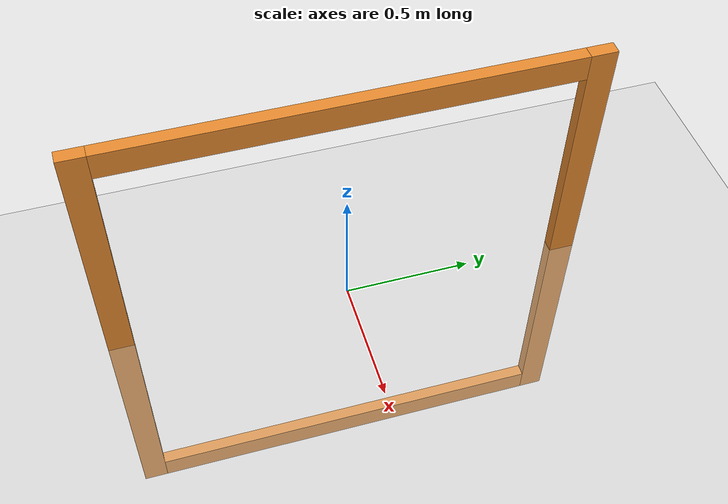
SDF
<sdf version="1.4">
 <world name="smart_drone_simple_world">
  <include><uri>model://ground_plane</uri></include>
  <include><uri>model://sun</uri></include>
  <model name="smart_drone_orange_gate7">
   <link name="left">
    <pose>0 -0.9 0 0 -0 0</pose>
    <inertial>
     <mass>1</mass>
     <inertia>
      <ixx>0.166667</ixx>
      <ixy>0</ixy>
      <ixz>0</ixz>
      <iyy>0.166667</iyy>
      <iyz>0</iyz>
      <izz>0.166667</izz>
     </inertia>
     <pose>0 -0.9 0 0 -0 0</pose>
    </inertial>
    <visual name="visual">
     <geometry><box><size>0.05 0.1 2</size></box></geometry>
     <material>
      <lighting>1</lighting>
      <script><uri>file://media/materials/scripts/gazebo.material</uri><name>Gazebo/Grey</name></script>
      <shader type="pixel"><normal_map>__default__</normal_map></shader>
      <ambient>0.9 0.54 0.18 1</ambient>
      <diffuse>0.9 0.54 0.18 1</diffuse>
      <specular>0.9 0.54 0.18 1</specular>
      <emissive>0 0 0 1</emissive>
     </material>
    </visual>
    <collision name="collision">
     <geometry><box><size>0.05 0.1 2</size></box></geometry>
     <surface>
      <friction>
       <ode><mu>1</mu><mu2>1</mu2><fdir1>0 0 0</fdir1><slip1>0</slip1><slip2>0</slip2></ode>
       <torsional>
        <coefficient>1</coefficient>
        <patch_radius>0</patch_radius>
        <surface_radius>0</surface_radius>
        <use_patch_radius>1</use_patch_radius>
        <ode><slip>0</slip></ode>
       </torsional>
      </friction>
      <bounce><restitution_coefficient>0</restitution_coefficient><threshold>1e+06</threshold></bounce>
      <contact>
       <collide_without_contact>0</collide_without_contact>
       <collide_without_contact_bitmask>1</collide_without_contact_bitmask>
       <collide_bitmask>1</collide_bitmask>
       <ode>
        <soft_cfm>0</soft_cfm>
        <soft_erp>0.2</soft_erp>
        <kp>1e+13</kp>
        <kd>1</kd>
        <max_vel>0.01</max_vel>
        <min_depth>0</min_depth>
       </ode>
       <bullet>
        <split_impulse>1</split_impulse>
        <split_impulse_penetration_threshold>-0.01</split_impulse_penetration_threshold>
        <soft_cfm>0</soft_cfm>
        <soft_erp>0.2</soft_erp>
        <kp>1e+13</kp>
        <kd>1</kd>
       </bullet>
      </contact>
     </surface>
    </collision>
   </link>
   <link name="top">
    <pose>0 0 0.95 0 -0 0</pose>
    <inertial>
     <mass>1</mass>
     <inertia>
      <ixx>0.166667</ixx>
      <ixy>0</ixy>
      <ixz>0</ixz>
      <iyy>0.166667</iyy>
      <iyz>0</iyz>
      <izz>0.166667</izz>
     </inertia>
     <pose>0 0 0.95 0 -0 0</pose>
    </inertial>
    <visual name="visual">
     <geometry><box><size>0.05 1.7 0.1</size></box></geometry>
     <material>
      <lighting>1</lighting>
      <script><uri>file://media/materials/scripts/gazebo.material</uri><name>Gazebo/Grey</name></script>
      <shader type="pixel"><normal_map>__default__</normal_map></shader>
      <ambient>0.9 0.54 0.18 1</ambient>
      <diffuse>0.9 0.54 0.18 1</diffuse>
      <specular>0.9 0.54 0.18 1</specular>
      <emissive>0 0 0 1</emissive>
     </material>
    </visual>
    <collision name="collision">
     <geometry><box><size>0.05 1.7 0.1</size></box></geometry>
     <surface>
      <friction>
       <ode><mu>1</mu><mu2>1</mu2><fdir1>0 0 0</fdir1><slip1>0</slip1><slip2>0</slip2></ode>
       <torsional>
        <coefficient>1</coefficient>
        <patch_radius>0</patch_radius>
        <surface_radius>0</surface_radius>
        <use_patch_radius>1</use_patch_radius>
        <ode><slip>0</slip></ode>
       </torsional>
      </friction>
      <bounce><restitution_coefficient>0</restitution_coefficient><threshold>1e+06</threshold></bounce>
      <contact>
       <collide_without_contact>0</collide_without_contact>
       <collide_without_contact_bitmask>1</collide_without_contact_bitmask>
       <collide_bitmask>1</collide_bitmask>
       <ode>
        <soft_cfm>0</soft_cfm>
        <soft_erp>0.2</soft_erp>
        <kp>1e+13</kp>
        <kd>1</kd>
        <max_vel>0.01</max_vel>
        <min_depth>0</min_depth>
       </ode>
       <bullet>
        <split_impulse>1</split_impulse>
        <split_impulse_penetration_threshold>-0.01</split_impulse_penetration_threshold>
        <soft_cfm>0</soft_cfm>
        <soft_erp>0.2</soft_erp>
        <kp>1e+13</kp>
        <kd>1</kd>
       </bullet>
      </contact>
     </surface>
    </collision>
   </link>
   <link name="bot">
    <pose>0 0 -0.95 0 -0 0</pose>
    <inertial>
     <mass>1</mass>
     <inertia>
      <ixx>0.166667</ixx>
      <ixy>0</ixy>
      <ixz>0</ixz>
      <iyy>0.166667</iyy>
      <iyz>0</iyz>
      <izz>0.166667</izz>
     </inertia>
     <pose>0 0 -0.95 0 -0 0</pose>
    </inertial>
    <visual name="visual">
     <geometry><box><size>0.05 1.7 0.1</size></box></geometry>
     <material>
      <lighting>1</lighting>
      <script><uri>file://media/materials/scripts/gazebo.material</uri><name>Gazebo/Grey</name></script>
      <shader type="pixel"><normal_map>__default__</normal_map></shader>
      <ambient>0.9 0.54 0.18 1</ambient>
      <diffuse>0.9 0.54 0.18 1</diffuse>
      <specular>0.9 0.54 0.18 1</specular>
      <emissive>0 0 0 1</emissive>
     </material>
    </visual>
    <collision name="collision">
     <geometry><box><size>0.05 1.7 0.1</size></box></geometry>
     <surface>
      <friction>
       <ode><mu>1</mu><mu2>1</mu2><fdir1>0 0 0</fdir1><slip1>0</slip1><slip2>0</slip2></ode>
       <torsional>
        <coefficient>1</coefficient>
        <patch_radius>0</patch_radius>
        <surface_radius>0</surface_radius>
        <use_patch_radius>1</use_patch_radius>
        <ode><slip>0</slip></ode>
       </torsional>
      </friction>
      <bounce><restitution_coefficient>0</restitution_coefficient><threshold>1e+06</threshold></bounce>
      <contact>
       <collide_without_contact>0</collide_without_contact>
       <collide_without_contact_bitmask>1</collide_without_contact_bitmask>
       <collide_bitmask>1</collide_bitmask>
       <ode>
        <soft_cfm>0</soft_cfm>
        <soft_erp>0.2</soft_erp>
        <kp>1e+13</kp>
        <kd>1</kd>
        <max_vel>0.01</max_vel>
        <min_depth>0</min_depth>
       </ode>
       <bullet>
        <split_impulse>1</split_impulse>
        <split_impulse_penetration_threshold>-0.01</split_impulse_penetration_threshold>
        <soft_cfm>0</soft_cfm>
        <soft_erp>0.2</soft_erp>
        <kp>1e+13</kp>
        <kd>1</kd>
       </bullet>
      </contact>
     </surface>
    </collision>
   </link>
   <link name="right">
    <pose>0 0.9 0 0 -0 0</pose>
    <inertial>
     <mass>1</mass>
     <inertia>
      <ixx>0.166667</ixx>
      <ixy>0</ixy>
      <ixz>0</ixz>
      <iyy>0.166667</iyy>
      <iyz>0</iyz>
      <izz>0.166667</izz>
     </inertia>
     <pose>0 0.9 0 0 -0 0</pose>
    </inertial>
    <visual name="visual">
     <geometry><box><size>0.05 0.1 2</size></box></geometry>
     <material>
      <lighting>1</lighting>
      <script><uri>file://media/materials/scripts/gazebo.material</uri><name>Gazebo/Grey</name></script>
      <shader type="pixel"><normal_map>__default__</normal_map></shader>
      <ambient>0.9 0.54 0.18 1</ambient>
      <diffuse>0.9 0.54 0.18 1</diffuse>
      <specular>0.9 0.54 0.18 1</specular>
      <emissive>0 0 0 1</emissive>
     </material>
    </visual>
    <collision name="collision">
     <geometry><box><size>0.05 0.1 2</size></box></geometry>
     <surface>
      <friction>
       <ode><mu>1</mu><mu2>1</mu2><fdir1>0 0 0</fdir1><slip1>0</slip1><slip2>0</slip2></ode>
       <torsional>
        <coefficient>1</coefficient>
        <patch_radius>0</patch_radius>
        <surface_radius>0</surface_radius>
        <use_patch_radius>1</use_patch_radius>
        <ode><slip>0</slip></ode>
       </torsional>
      </friction>
      <bounce><restitution_coefficient>0</restitution_coefficient><threshold>1e+06</threshold></bounce>
      <contact>
       <collide_without_contact>0</collide_without_contact>
       <collide_without_contact_bitmask>1</collide_without_contact_bitmask>
       <collide_bitmask>1</collide_bitmask>
       <ode>
        <soft_cfm>0</soft_cfm>
        <soft_erp>0.2</soft_erp>
        <kp>1e+13</kp>
        <kd>1</kd>
        <max_vel>0.01</max_vel>
        <min_depth>0</min_depth>
       </ode>
       <bullet>
        <split_impulse>1</split_impulse>
        <split_impulse_penetration_threshold>-0.01</split_impulse_penetration_threshold>
        <soft_cfm>0</soft_cfm>
        <soft_erp>0.2</soft_erp>
        <kp>1e+13</kp>
        <kd>1</kd>
       </bullet>
      </contact>
     </surface>
    </collision>
   </link>
   <static>1</static>
  </model>
 </world>
</sdf>
